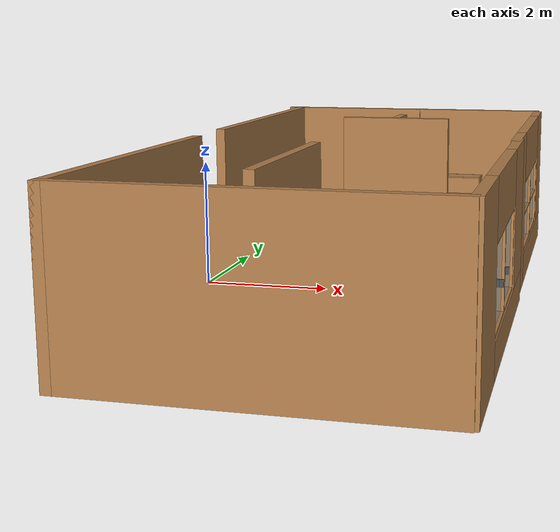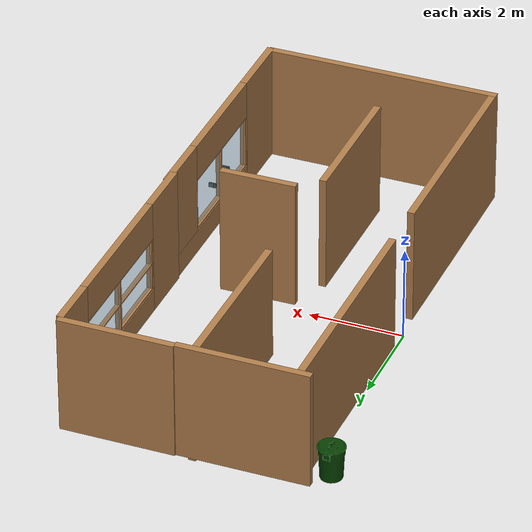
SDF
<?xml version='1.0' encoding='utf-8'?>
<sdf version="1.7">
  <model name="world">
    <static>1</static>
    <frame name="world::__model__" attached_to="world::Wall_81">
      <pose relative_to="__model__">0 0 0 0 -0 0</pose>
    </frame>
    <link name="world::Wall_81">
      <pose relative_to="world::__model__">3.81216 5.30314 0 0 -0 3.14159</pose>
      <self_collide>0</self_collide>
      <kinematic>0</kinematic>
      <enable_wind>0</enable_wind>
      <inertial>
        <inertia>
          <ixx>0</ixx>
          <ixy>0</ixy>
          <ixz>0</ixz>
          <iyy>0</iyy>
          <iyz>0</iyz>
          <izz>0</izz>
        </inertia>
        <mass>0</mass>
        <pose>0 0 0 0 -0 0</pose>
      </inertial>
      <visual name="Wall_81_Visual">
        <pose>0 0 1.25 0 -0 0</pose>
        <geometry>
          <box>
            <size>2.39676 0.15 2.5</size>
          </box>
        </geometry>
        <material>
          <script>
            <uri>file://media/materials/scripts/gazebo.material</uri>
            <name>Gazebo/Wood</name>
          </script>
          <ambient>1 1 1 1</ambient>
          <diffuse>1 1 1 1</diffuse>
          <specular>0.2 0.2 0.2 1</specular>
          <emissive>0 0 0 1</emissive>
          <shader type="pixel" />
        </material>
        <cast_shadows>1</cast_shadows>
        <transparency>0</transparency>
      </visual>
      <collision name="Wall_81_Collision">
        <laser_retro>0</laser_retro>
        <max_contacts>10</max_contacts>
        <pose>0 0 1.25 0 -0 0</pose>
        <geometry>
          <box>
            <size>2.39676 0.15 2.5</size>
          </box>
        </geometry>
        <surface>
          <friction>
            <ode>
              <mu>1</mu>
              <mu2>1</mu2>
              <fdir1>0 0 0</fdir1>
              <slip1>0</slip1>
              <slip2>0</slip2>
            </ode>
            <torsional>
              <coefficient>1</coefficient>
              <patch_radius>0</patch_radius>
              <surface_radius>0</surface_radius>
              <use_patch_radius>1</use_patch_radius>
              <ode>
                <slip>0</slip>
              </ode>
            </torsional>
          </friction>
          <bounce>
            <restitution_coefficient>0</restitution_coefficient>
            <threshold>1e+06</threshold>
          </bounce>
          <contact>
            <collide_without_contact>0</collide_without_contact>
            <collide_without_contact_bitmask>1</collide_without_contact_bitmask>
            <collide_bitmask>1</collide_bitmask>
            <ode>
              <soft_cfm>0</soft_cfm>
              <soft_erp>0.2</soft_erp>
              <kp>1e+13</kp>
              <kd>1</kd>
              <max_vel>0.01</max_vel>
              <min_depth>0</min_depth>
            </ode>
            <bullet>
              <split_impulse>1</split_impulse>
              <split_impulse_penetration_threshold>-0.01</split_impulse_penetration_threshold>
              <soft_cfm>0</soft_cfm>
              <soft_erp>0.2</soft_erp>
              <kp>1e+13</kp>
              <kd>1</kd>
            </bullet>
          </contact>
        </surface>
      </collision>
    </link>
    <link name="world::Wall_82">
      <pose relative_to="world::__model__">1.25 5.26876 0 0 -0 3.14159</pose>
      <self_collide>0</self_collide>
      <kinematic>0</kinematic>
      <enable_wind>0</enable_wind>
      <visual name="Wall_82_Visual">
        <pose>0 0 1.25 0 -0 0</pose>
        <geometry>
          <box>
            <size>2.75 0.15 2.5</size>
          </box>
        </geometry>
        <material>
          <script>
            <uri>file://media/materials/scripts/gazebo.material</uri>
            <name>Gazebo/Wood</name>
          </script>
          <ambient>1 1 1 1</ambient>
          <diffuse>1 1 1 1</diffuse>
          <specular>0.2 0.2 0.2 1</specular>
          <emissive>0 0 0 1</emissive>
          <shader type="pixel" />
        </material>
        <cast_shadows>1</cast_shadows>
        <transparency>0</transparency>
      </visual>
      <collision name="Wall_82_Collision">
        <laser_retro>0</laser_retro>
        <max_contacts>10</max_contacts>
        <pose>0 0 1.25 0 -0 0</pose>
        <geometry>
          <box>
            <size>2.75 0.15 2.5</size>
          </box>
        </geometry>
        <surface>
          <friction>
            <ode>
              <mu>1</mu>
              <mu2>1</mu2>
              <fdir1>0 0 0</fdir1>
              <slip1>0</slip1>
              <slip2>0</slip2>
            </ode>
            <torsional>
              <coefficient>1</coefficient>
              <patch_radius>0</patch_radius>
              <surface_radius>0</surface_radius>
              <use_patch_radius>1</use_patch_radius>
              <ode>
                <slip>0</slip>
              </ode>
            </torsional>
          </friction>
          <bounce>
            <restitution_coefficient>0</restitution_coefficient>
            <threshold>1e+06</threshold>
          </bounce>
          <contact>
            <collide_without_contact>0</collide_without_contact>
            <collide_without_contact_bitmask>1</collide_without_contact_bitmask>
            <collide_bitmask>1</collide_bitmask>
            <ode>
              <soft_cfm>0</soft_cfm>
              <soft_erp>0.2</soft_erp>
              <kp>1e+13</kp>
              <kd>1</kd>
              <max_vel>0.01</max_vel>
              <min_depth>0</min_depth>
            </ode>
            <bullet>
              <split_impulse>1</split_impulse>
              <split_impulse_penetration_threshold>-0.01</split_impulse_penetration_threshold>
              <soft_cfm>0</soft_cfm>
              <soft_erp>0.2</soft_erp>
              <kp>1e+13</kp>
              <kd>1</kd>
            </bullet>
          </contact>
        </surface>
      </collision>
    </link>
    <link name="world::Wall_88_clone_clone_0_clone_1">
      <pose relative_to="world::__model__">3.18351 -0.266846 0.164975 0 0 -3.12845</pose>
      <self_collide>0</self_collide>
      <kinematic>0</kinematic>
      <enable_wind>0</enable_wind>
      <inertial>
        <inertia>
          <ixx>0</ixx>
          <ixy>0</ixy>
          <ixz>0</ixz>
          <iyy>0</iyy>
          <iyz>0</iyz>
          <izz>0</izz>
        </inertia>
        <mass>0</mass>
        <pose>0 0 0 0 -0 0</pose>
      </inertial>
      <visual name="Wall_88_Visual">
        <pose>0 0 1.25 0 -0 0</pose>
        <geometry>
          <box>
            <size>1.5991 0.15 2.77966</size>
          </box>
        </geometry>
        <material>
          <script>
            <uri>file://media/materials/scripts/gazebo.material</uri>
            <name>Gazebo/Wood</name>
          </script>
          <ambient>1 1 1 1</ambient>
          <diffuse>1 1 1 1</diffuse>
          <specular>0.2 0.2 0.2 1</specular>
          <emissive>0 0 0 1</emissive>
          <shader type="pixel" />
        </material>
        <cast_shadows>1</cast_shadows>
        <transparency>0</transparency>
      </visual>
      <collision name="Wall_88_Collision">
        <laser_retro>0</laser_retro>
        <max_contacts>10</max_contacts>
        <pose>0 0 1.25 0 -0 0</pose>
        <geometry>
          <box>
            <size>1.5991 0.15 2.77966</size>
          </box>
        </geometry>
        <surface>
          <friction>
            <ode>
              <mu>1</mu>
              <mu2>1</mu2>
              <fdir1>0 0 0</fdir1>
              <slip1>0</slip1>
              <slip2>0</slip2>
            </ode>
            <torsional>
              <coefficient>1</coefficient>
              <patch_radius>0</patch_radius>
              <surface_radius>0</surface_radius>
              <use_patch_radius>1</use_patch_radius>
              <ode>
                <slip>0</slip>
              </ode>
            </torsional>
          </friction>
          <bounce>
            <restitution_coefficient>0</restitution_coefficient>
            <threshold>1e+06</threshold>
          </bounce>
          <contact>
            <collide_without_contact>0</collide_without_contact>
            <collide_without_contact_bitmask>1</collide_without_contact_bitmask>
            <collide_bitmask>1</collide_bitmask>
            <ode>
              <soft_cfm>0</soft_cfm>
              <soft_erp>0.2</soft_erp>
              <kp>1e+13</kp>
              <kd>1</kd>
              <max_vel>0.01</max_vel>
              <min_depth>0</min_depth>
            </ode>
            <bullet>
              <split_impulse>1</split_impulse>
              <split_impulse_penetration_threshold>-0.01</split_impulse_penetration_threshold>
              <soft_cfm>0</soft_cfm>
              <soft_erp>0.2</soft_erp>
              <kp>1e+13</kp>
              <kd>1</kd>
            </bullet>
          </contact>
        </surface>
      </collision>
    </link>
    <link name="world::Wall_88_clone_clone_1_clone">
      <pose relative_to="world::__model__">2.27024 3.40147 -0.083025 0 0 -1.57962</pose>
      <self_collide>0</self_collide>
      <kinematic>0</kinematic>
      <enable_wind>0</enable_wind>
      <inertial>
        <inertia>
          <ixx>0</ixx>
          <ixy>0</ixy>
          <ixz>0</ixz>
          <iyy>0</iyy>
          <iyz>0</iyz>
          <izz>0</izz>
        </inertia>
        <mass>0</mass>
        <pose>0 0 0 0 -0 0</pose>
      </inertial>
      <visual name="Wall_88_Visual">
        <pose>0 0 1.25 0 -0 0</pose>
        <geometry>
          <box>
            <size>3.83827 0.15 2.45305</size>
          </box>
        </geometry>
        <material>
          <script>
            <uri>file://media/materials/scripts/gazebo.material</uri>
            <name>Gazebo/Wood</name>
          </script>
          <ambient>1 1 1 1</ambient>
          <diffuse>1 1 1 1</diffuse>
          <specular>0.2 0.2 0.2 1</specular>
          <emissive>0 0 0 1</emissive>
          <shader type="pixel" />
        </material>
        <cast_shadows>1</cast_shadows>
        <transparency>0</transparency>
      </visual>
      <collision name="Wall_88_Collision">
        <laser_retro>0</laser_retro>
        <max_contacts>10</max_contacts>
        <pose>0 0 1.25 0 -0 0</pose>
        <geometry>
          <box>
            <size>3.83827 0.15 2.45305</size>
          </box>
        </geometry>
        <surface>
          <friction>
            <ode>
              <mu>1</mu>
              <mu2>1</mu2>
              <fdir1>0 0 0</fdir1>
              <slip1>0</slip1>
              <slip2>0</slip2>
            </ode>
            <torsional>
              <coefficient>1</coefficient>
              <patch_radius>0</patch_radius>
              <surface_radius>0</surface_radius>
              <use_patch_radius>1</use_patch_radius>
              <ode>
                <slip>0</slip>
              </ode>
            </torsional>
          </friction>
          <bounce>
            <restitution_coefficient>0</restitution_coefficient>
            <threshold>1e+06</threshold>
          </bounce>
          <contact>
            <collide_without_contact>0</collide_without_contact>
            <collide_without_contact_bitmask>1</collide_without_contact_bitmask>
            <collide_bitmask>1</collide_bitmask>
            <ode>
              <soft_cfm>0</soft_cfm>
              <soft_erp>0.2</soft_erp>
              <kp>1e+13</kp>
              <kd>1</kd>
              <max_vel>0.01</max_vel>
              <min_depth>0</min_depth>
            </ode>
            <bullet>
              <split_impulse>1</split_impulse>
              <split_impulse_penetration_threshold>-0.01</split_impulse_penetration_threshold>
              <soft_cfm>0</soft_cfm>
              <soft_erp>0.2</soft_erp>
              <kp>1e+13</kp>
              <kd>1</kd>
            </bullet>
          </contact>
        </surface>
      </collision>
    </link>
    <link name="world::Wall_93">
      <pose relative_to="world::__model__">2.13924 -2.58302 0 0 0 -1.5708</pose>
      <self_collide>0</self_collide>
      <kinematic>0</kinematic>
      <enable_wind>0</enable_wind>
      <inertial>
        <inertia>
          <ixx>0</ixx>
          <ixy>0</ixy>
          <ixz>0</ixz>
          <iyy>0</iyy>
          <iyz>0</iyz>
          <izz>0</izz>
        </inertia>
        <mass>0</mass>
        <pose>0 0 0 0 -0 0</pose>
      </inertial>
      <visual name="Wall_93_Visual">
        <pose>0 0 1.25 0 -0 0</pose>
        <geometry>
          <box>
            <size>3.04334 0.15 2.5</size>
          </box>
        </geometry>
        <material>
          <script>
            <uri>file://media/materials/scripts/gazebo.material</uri>
            <name>Gazebo/Wood</name>
          </script>
          <ambient>1 1 1 1</ambient>
          <diffuse>1 1 1 1</diffuse>
          <specular>0.2 0.2 0.2 1</specular>
          <emissive>0 0 0 1</emissive>
          <shader type="pixel" />
        </material>
        <cast_shadows>1</cast_shadows>
        <transparency>0</transparency>
      </visual>
      <collision name="Wall_93_Collision">
        <laser_retro>0</laser_retro>
        <max_contacts>10</max_contacts>
        <pose>0 0 1.25 0 -0 0</pose>
        <geometry>
          <box>
            <size>3.04334 0.15 2.5</size>
          </box>
        </geometry>
        <surface>
          <friction>
            <ode>
              <mu>1</mu>
              <mu2>1</mu2>
              <fdir1>0 0 0</fdir1>
              <slip1>0</slip1>
              <slip2>0</slip2>
            </ode>
            <torsional>
              <coefficient>1</coefficient>
              <patch_radius>0</patch_radius>
              <surface_radius>0</surface_radius>
              <use_patch_radius>1</use_patch_radius>
              <ode>
                <slip>0</slip>
              </ode>
            </torsional>
          </friction>
          <bounce>
            <restitution_coefficient>0</restitution_coefficient>
            <threshold>1e+06</threshold>
          </bounce>
          <contact>
            <collide_without_contact>0</collide_without_contact>
            <collide_without_contact_bitmask>1</collide_without_contact_bitmask>
            <collide_bitmask>1</collide_bitmask>
            <ode>
              <soft_cfm>0</soft_cfm>
              <soft_erp>0.2</soft_erp>
              <kp>1e+13</kp>
              <kd>1</kd>
              <max_vel>0.01</max_vel>
              <min_depth>0</min_depth>
            </ode>
            <bullet>
              <split_impulse>1</split_impulse>
              <split_impulse_penetration_threshold>-0.01</split_impulse_penetration_threshold>
              <soft_cfm>0</soft_cfm>
              <soft_erp>0.2</soft_erp>
              <kp>1e+13</kp>
              <kd>1</kd>
            </bullet>
          </contact>
        </surface>
      </collision>
    </link>
    <link name="world::Wall_96">
      <pose relative_to="world::__model__">4.99028 2.48493 0 0 -0 1.5708</pose>
      <self_collide>0</self_collide>
      <kinematic>0</kinematic>
      <enable_wind>0</enable_wind>
      <visual name="Wall_96_Visual_1">
        <pose>0.626741 0 0.25 0 -0 0</pose>
        <geometry>
          <box>
            <size>4.246519 0.15 0.5</size>
          </box>
        </geometry>
        <material>
          <script>
            <uri>file://media/materials/scripts/gazebo.material</uri>
            <name>Gazebo/Wood</name>
          </script>
          <ambient>1 1 1 1</ambient>
          <diffuse>1 1 1 1</diffuse>
          <specular>0.2 0.2 0.2 1</specular>
          <emissive>0 0 0 1</emissive>
          <shader type="pixel" />
        </material>
        <cast_shadows>1</cast_shadows>
        <transparency>0</transparency>
      </visual>
      <visual name="Wall_96_Visual_2">
        <pose>2.194241 0 1.5 0 -0 0</pose>
        <geometry>
          <box>
            <size>1.111519 0.15 2</size>
          </box>
        </geometry>
        <material>
          <script>
            <uri>file://media/materials/scripts/gazebo.material</uri>
            <name>Gazebo/Wood</name>
          </script>
          <ambient>1 1 1 1</ambient>
          <diffuse>1 1 1 1</diffuse>
          <specular>0.2 0.2 0.2 1</specular>
          <emissive>0 0 0 1</emissive>
          <shader type="pixel" />
        </material>
        <cast_shadows>1</cast_shadows>
        <transparency>0</transparency>
      </visual>
      <visual name="Wall_96_Visual_3">
        <pose>0.070981 0 2.1 0 -0 0</pose>
        <geometry>
          <box>
            <size>3.135 0.15 0.8</size>
          </box>
        </geometry>
        <material>
          <script>
            <uri>file://media/materials/scripts/gazebo.material</uri>
            <name>Gazebo/Wood</name>
          </script>
          <ambient>1 1 1 1</ambient>
          <diffuse>1 1 1 1</diffuse>
          <specular>0.2 0.2 0.2 1</specular>
          <emissive>0 0 0 1</emissive>
          <shader type="pixel" />
        </material>
        <cast_shadows>1</cast_shadows>
        <transparency>0</transparency>
      </visual>
      <visual name="Wall_96_Visual_0">
        <pose>-2.12326 0 1.25 0 -0 0</pose>
        <geometry>
          <box>
            <size>1.253481 0.15 2.5</size>
          </box>
        </geometry>
        <material>
          <script>
            <uri>file://media/materials/scripts/gazebo.material</uri>
            <name>Gazebo/Wood</name>
          </script>
          <ambient>1 1 1 1</ambient>
          <diffuse>1 1 1 1</diffuse>
          <specular>0.2 0.2 0.2 1</specular>
          <emissive>0 0 0 1</emissive>
          <shader type="pixel" />
        </material>
        <cast_shadows>1</cast_shadows>
        <transparency>0</transparency>
      </visual>
      <collision name="Wall_96_Collision_2">
        <laser_retro>0</laser_retro>
        <max_contacts>10</max_contacts>
        <pose>2.194241 0 1.5 0 -0 0</pose>
        <geometry>
          <box>
            <size>1.111519 0.15 2</size>
          </box>
        </geometry>
        <surface>
          <friction>
            <ode>
              <mu>1</mu>
              <mu2>1</mu2>
              <fdir1>0 0 0</fdir1>
              <slip1>0</slip1>
              <slip2>0</slip2>
            </ode>
            <torsional>
              <coefficient>1</coefficient>
              <patch_radius>0</patch_radius>
              <surface_radius>0</surface_radius>
              <use_patch_radius>1</use_patch_radius>
              <ode>
                <slip>0</slip>
              </ode>
            </torsional>
          </friction>
          <bounce>
            <restitution_coefficient>0</restitution_coefficient>
            <threshold>1e+06</threshold>
          </bounce>
          <contact>
            <collide_without_contact>0</collide_without_contact>
            <collide_without_contact_bitmask>1</collide_without_contact_bitmask>
            <collide_bitmask>1</collide_bitmask>
            <ode>
              <soft_cfm>0</soft_cfm>
              <soft_erp>0.2</soft_erp>
              <kp>1e+13</kp>
              <kd>1</kd>
              <max_vel>0.01</max_vel>
              <min_depth>0</min_depth>
            </ode>
            <bullet>
              <split_impulse>1</split_impulse>
              <split_impulse_penetration_threshold>-0.01</split_impulse_penetration_threshold>
              <soft_cfm>0</soft_cfm>
              <soft_erp>0.2</soft_erp>
              <kp>1e+13</kp>
              <kd>1</kd>
            </bullet>
          </contact>
        </surface>
      </collision>
      <collision name="Wall_96_Collision_0">
        <laser_retro>0</laser_retro>
        <max_contacts>10</max_contacts>
        <pose>-2.12326 0 1.25 0 -0 0</pose>
        <geometry>
          <box>
            <size>1.253481 0.15 2.5</size>
          </box>
        </geometry>
        <surface>
          <friction>
            <ode>
              <mu>1</mu>
              <mu2>1</mu2>
              <fdir1>0 0 0</fdir1>
              <slip1>0</slip1>
              <slip2>0</slip2>
            </ode>
            <torsional>
              <coefficient>1</coefficient>
              <patch_radius>0</patch_radius>
              <surface_radius>0</surface_radius>
              <use_patch_radius>1</use_patch_radius>
              <ode>
                <slip>0</slip>
              </ode>
            </torsional>
          </friction>
          <bounce>
            <restitution_coefficient>0</restitution_coefficient>
            <threshold>1e+06</threshold>
          </bounce>
          <contact>
            <collide_without_contact>0</collide_without_contact>
            <collide_without_contact_bitmask>1</collide_without_contact_bitmask>
            <collide_bitmask>1</collide_bitmask>
            <ode>
              <soft_cfm>0</soft_cfm>
              <soft_erp>0.2</soft_erp>
              <kp>1e+13</kp>
              <kd>1</kd>
              <max_vel>0.01</max_vel>
              <min_depth>0</min_depth>
            </ode>
            <bullet>
              <split_impulse>1</split_impulse>
              <split_impulse_penetration_threshold>-0.01</split_impulse_penetration_threshold>
              <soft_cfm>0</soft_cfm>
              <soft_erp>0.2</soft_erp>
              <kp>1e+13</kp>
              <kd>1</kd>
            </bullet>
          </contact>
        </surface>
      </collision>
      <collision name="Wall_96_Collision_1">
        <laser_retro>0</laser_retro>
        <max_contacts>10</max_contacts>
        <pose>0.626741 0 0.25 0 -0 0</pose>
        <geometry>
          <box>
            <size>4.246519 0.15 0.5</size>
          </box>
        </geometry>
        <surface>
          <friction>
            <ode>
              <mu>1</mu>
              <mu2>1</mu2>
              <fdir1>0 0 0</fdir1>
              <slip1>0</slip1>
              <slip2>0</slip2>
            </ode>
            <torsional>
              <coefficient>1</coefficient>
              <patch_radius>0</patch_radius>
              <surface_radius>0</surface_radius>
              <use_patch_radius>1</use_patch_radius>
              <ode>
                <slip>0</slip>
              </ode>
            </torsional>
          </friction>
          <bounce>
            <restitution_coefficient>0</restitution_coefficient>
            <threshold>1e+06</threshold>
          </bounce>
          <contact>
            <collide_without_contact>0</collide_without_contact>
            <collide_without_contact_bitmask>1</collide_without_contact_bitmask>
            <collide_bitmask>1</collide_bitmask>
            <ode>
              <soft_cfm>0</soft_cfm>
              <soft_erp>0.2</soft_erp>
              <kp>1e+13</kp>
              <kd>1</kd>
              <max_vel>0.01</max_vel>
              <min_depth>0</min_depth>
            </ode>
            <bullet>
              <split_impulse>1</split_impulse>
              <split_impulse_penetration_threshold>-0.01</split_impulse_penetration_threshold>
              <soft_cfm>0</soft_cfm>
              <soft_erp>0.2</soft_erp>
              <kp>1e+13</kp>
              <kd>1</kd>
            </bullet>
          </contact>
        </surface>
      </collision>
      <collision name="Wall_96_Collision_3">
        <laser_retro>0</laser_retro>
        <max_contacts>10</max_contacts>
        <pose>0.070981 0 2.1 0 -0 0</pose>
        <geometry>
          <box>
            <size>3.135 0.15 0.8</size>
          </box>
        </geometry>
        <surface>
          <friction>
            <ode>
              <mu>1</mu>
              <mu2>1</mu2>
              <fdir1>0 0 0</fdir1>
              <slip1>0</slip1>
              <slip2>0</slip2>
            </ode>
            <torsional>
              <coefficient>1</coefficient>
              <patch_radius>0</patch_radius>
              <surface_radius>0</surface_radius>
              <use_patch_radius>1</use_patch_radius>
              <ode>
                <slip>0</slip>
              </ode>
            </torsional>
          </friction>
          <bounce>
            <restitution_coefficient>0</restitution_coefficient>
            <threshold>1e+06</threshold>
          </bounce>
          <contact>
            <collide_without_contact>0</collide_without_contact>
            <collide_without_contact_bitmask>1</collide_without_contact_bitmask>
            <collide_bitmask>1</collide_bitmask>
            <ode>
              <soft_cfm>0</soft_cfm>
              <soft_erp>0.2</soft_erp>
              <kp>1e+13</kp>
              <kd>1</kd>
              <max_vel>0.01</max_vel>
              <min_depth>0</min_depth>
            </ode>
            <bullet>
              <split_impulse>1</split_impulse>
              <split_impulse_penetration_threshold>-0.01</split_impulse_penetration_threshold>
              <soft_cfm>0</soft_cfm>
              <soft_erp>0.2</soft_erp>
              <kp>1e+13</kp>
              <kd>1</kd>
            </bullet>
          </contact>
        </surface>
      </collision>
      <visual name="Wall_96_Win_FrameTop">
        <pose>0.071 0 1.675 0 -0 0</pose>
        <geometry>
          <box>
            <size>3.135 0.12 0.05</size>
          </box>
        </geometry>
        <material>
          <script>
            <uri>file://media/materials/scripts/gazebo.material</uri>
            <name>Gazebo/Wood</name>
          </script>
          <ambient>1 1 1 1</ambient>
          <diffuse>1 1 1 1</diffuse>
          <specular>0.2 0.2 0.2 1</specular>
          <emissive>0 0 0 1</emissive>
          <shader type="pixel" />
        </material>
        <cast_shadows>1</cast_shadows>
        <transparency>0</transparency>
      </visual>
      <visual name="Wall_96_Win_FrameBottom">
        <pose>0.071 0 0.525 0 -0 0</pose>
        <geometry>
          <box>
            <size>3.135 0.12 0.05</size>
          </box>
        </geometry>
        <material>
          <script>
            <uri>file://media/materials/scripts/gazebo.material</uri>
            <name>Gazebo/Wood</name>
          </script>
          <ambient>1 1 1 1</ambient>
          <diffuse>1 1 1 1</diffuse>
          <specular>0.2 0.2 0.2 1</specular>
          <emissive>0 0 0 1</emissive>
          <shader type="pixel" />
        </material>
        <cast_shadows>1</cast_shadows>
        <transparency>0</transparency>
      </visual>
      <visual name="Wall_96_Win_FrameLeft">
        <pose>-1.471519 0 1.1 0 -0 0</pose>
        <geometry>
          <box>
            <size>0.05 0.12 1.1</size>
          </box>
        </geometry>
        <material>
          <script>
            <uri>file://media/materials/scripts/gazebo.material</uri>
            <name>Gazebo/Wood</name>
          </script>
          <ambient>1 1 1 1</ambient>
          <diffuse>1 1 1 1</diffuse>
          <specular>0.2 0.2 0.2 1</specular>
          <emissive>0 0 0 1</emissive>
          <shader type="pixel" />
        </material>
        <cast_shadows>1</cast_shadows>
        <transparency>0</transparency>
      </visual>
      <visual name="Wall_96_Win_FrameRight">
        <pose>1.613481 0 1.1 0 -0 0</pose>
        <geometry>
          <box>
            <size>0.05 0.12 1.1</size>
          </box>
        </geometry>
        <material>
          <script>
            <uri>file://media/materials/scripts/gazebo.material</uri>
            <name>Gazebo/Wood</name>
          </script>
          <ambient>1 1 1 1</ambient>
          <diffuse>1 1 1 1</diffuse>
          <specular>0.2 0.2 0.2 1</specular>
          <emissive>0 0 0 1</emissive>
          <shader type="pixel" />
        </material>
        <cast_shadows>1</cast_shadows>
        <transparency>0</transparency>
      </visual>
      <visual name="Wall_96_Win_Mullion">
        <pose>0.071 0 1.1 0 -0 0</pose>
        <geometry>
          <box>
            <size>0.06 0.12 1.1</size>
          </box>
        </geometry>
        <material>
          <script>
            <uri>file://media/materials/scripts/gazebo.material</uri>
            <name>Gazebo/Wood</name>
          </script>
          <ambient>1 1 1 1</ambient>
          <diffuse>1 1 1 1</diffuse>
          <specular>0.2 0.2 0.2 1</specular>
          <emissive>0 0 0 1</emissive>
          <shader type="pixel" />
        </material>
        <cast_shadows>1</cast_shadows>
        <transparency>0</transparency>
      </visual>
      <visual name="Wall_96_Win_MidRailLeft">
        <pose>-0.70276 0 1.1 0 -0 0</pose>
        <geometry>
          <box>
            <size>1.487519 0.1 0.04</size>
          </box>
        </geometry>
        <material>
          <script>
            <uri>file://media/materials/scripts/gazebo.material</uri>
            <name>Gazebo/Wood</name>
          </script>
          <ambient>1 1 1 1</ambient>
          <diffuse>1 1 1 1</diffuse>
          <specular>0.2 0.2 0.2 1</specular>
          <emissive>0 0 0 1</emissive>
          <shader type="pixel" />
        </material>
        <cast_shadows>1</cast_shadows>
        <transparency>0</transparency>
      </visual>
      <visual name="Wall_96_Win_MidRailRight">
        <pose>0.844741 0 1.1 0 -0 0</pose>
        <geometry>
          <box>
            <size>1.487481 0.1 0.04</size>
          </box>
        </geometry>
        <material>
          <script>
            <uri>file://media/materials/scripts/gazebo.material</uri>
            <name>Gazebo/Wood</name>
          </script>
          <ambient>1 1 1 1</ambient>
          <diffuse>1 1 1 1</diffuse>
          <specular>0.2 0.2 0.2 1</specular>
          <emissive>0 0 0 1</emissive>
          <shader type="pixel" />
        </material>
        <cast_shadows>1</cast_shadows>
        <transparency>0</transparency>
      </visual>
      <visual name="Wall_96_Win_GlassUL">
        <pose>-0.70276 0 1.375 0 -0 0</pose>
        <geometry>
          <box>
            <size>1.487519 0.04 0.525</size>
          </box>
        </geometry>
        <material>
          <ambient>0.6 0.8 0.95 0.4</ambient>
          <diffuse>0.6 0.8 0.95 0.4</diffuse>
          <specular>1 1 1 0.8</specular>
          <emissive>0 0 0 1</emissive>
          <shader type="pixel" />
        </material>
        <cast_shadows>0</cast_shadows>
        <transparency>0.6</transparency>
      </visual>
      <visual name="Wall_96_Win_GlassLL">
        <pose>-0.70276 0 0.825 0 -0 0</pose>
        <geometry>
          <box>
            <size>1.487519 0.04 0.525</size>
          </box>
        </geometry>
        <material>
          <ambient>0.6 0.8 0.95 0.4</ambient>
          <diffuse>0.6 0.8 0.95 0.4</diffuse>
          <specular>1 1 1 0.8</specular>
          <emissive>0 0 0 1</emissive>
          <shader type="pixel" />
        </material>
        <cast_shadows>0</cast_shadows>
        <transparency>0.6</transparency>
      </visual>
      <visual name="Wall_96_Win_GlassUR">
        <pose>0.844741 0 1.375 0 -0 0</pose>
        <geometry>
          <box>
            <size>1.487481 0.04 0.525</size>
          </box>
        </geometry>
        <material>
          <ambient>0.6 0.8 0.95 0.4</ambient>
          <diffuse>0.6 0.8 0.95 0.4</diffuse>
          <specular>1 1 1 0.8</specular>
          <emissive>0 0 0 1</emissive>
          <shader type="pixel" />
        </material>
        <cast_shadows>0</cast_shadows>
        <transparency>0.6</transparency>
      </visual>
      <visual name="Wall_96_Win_GlassLR">
        <pose>0.844741 0 0.825 0 -0 0</pose>
        <geometry>
          <box>
            <size>1.487481 0.04 0.525</size>
          </box>
        </geometry>
        <material>
          <ambient>0.6 0.8 0.95 0.4</ambient>
          <diffuse>0.6 0.8 0.95 0.4</diffuse>
          <specular>1 1 1 0.8</specular>
          <emissive>0 0 0 1</emissive>
          <shader type="pixel" />
        </material>
        <cast_shadows>0</cast_shadows>
        <transparency>0.6</transparency>
      </visual>
    </link>
    <link name="world::Wall_96_clone">
      <pose relative_to="world::__model__">5.01671 -2.70631 0 0 -0 1.5708</pose>
      <self_collide>0</self_collide>
      <kinematic>0</kinematic>
      <enable_wind>0</enable_wind>
      <visual name="Wall_96_Visual_0">
        <pose>-1.99826 0 1.25 0 -0 0</pose>
        <geometry>
          <box>
            <size>1.50348 0.15 2.5</size>
          </box>
        </geometry>
        <material>
          <script>
            <uri>file://media/materials/scripts/gazebo.material</uri>
            <name>Gazebo/Wood</name>
          </script>
          <ambient>1 1 1 1</ambient>
          <diffuse>1 1 1 1</diffuse>
          <specular>0.2 0.2 0.2 1</specular>
          <emissive>0 0 0 1</emissive>
          <shader type="pixel" />
        </material>
        <cast_shadows>1</cast_shadows>
        <transparency>0</transparency>
      </visual>
      <visual name="Wall_96_Visual_2">
        <pose>2.06924 0 1.5 0 -0 0</pose>
        <geometry>
          <box>
            <size>1.36152 0.15 2</size>
          </box>
        </geometry>
        <material>
          <script>
            <uri>file://media/materials/scripts/gazebo.material</uri>
            <name>Gazebo/Wood</name>
          </script>
          <ambient>1 1 1 1</ambient>
          <diffuse>1 1 1 1</diffuse>
          <specular>0.2 0.2 0.2 1</specular>
          <emissive>0 0 0 1</emissive>
          <shader type="pixel" />
        </material>
        <cast_shadows>1</cast_shadows>
        <transparency>0</transparency>
      </visual>
      <visual name="Wall_96_Visual_1">
        <pose>0.75174 0 0.25 0 -0 0</pose>
        <geometry>
          <box>
            <size>3.99652 0.15 0.5</size>
          </box>
        </geometry>
        <material>
          <script>
            <uri>file://media/materials/scripts/gazebo.material</uri>
            <name>Gazebo/Wood</name>
          </script>
          <ambient>1 1 1 1</ambient>
          <diffuse>1 1 1 1</diffuse>
          <specular>0.2 0.2 0.2 1</specular>
          <emissive>0 0 0 1</emissive>
          <shader type="pixel" />
        </material>
        <cast_shadows>1</cast_shadows>
        <transparency>0</transparency>
      </visual>
      <visual name="Wall_96_Visual_3">
        <pose>0.070981 0 2.1 0 -0 0</pose>
        <geometry>
          <box>
            <size>2.635 0.15 0.8</size>
          </box>
        </geometry>
        <material>
          <script>
            <uri>file://media/materials/scripts/gazebo.material</uri>
            <name>Gazebo/Wood</name>
          </script>
          <ambient>1 1 1 1</ambient>
          <diffuse>1 1 1 1</diffuse>
          <specular>0.2 0.2 0.2 1</specular>
          <emissive>0 0 0 1</emissive>
          <shader type="pixel" />
        </material>
        <cast_shadows>1</cast_shadows>
        <transparency>0</transparency>
      </visual>
      <collision name="Wall_96_Collision_1">
        <laser_retro>0</laser_retro>
        <max_contacts>10</max_contacts>
        <pose>0.75174 0 0.25 0 -0 0</pose>
        <geometry>
          <box>
            <size>3.99652 0.15 0.5</size>
          </box>
        </geometry>
        <surface>
          <friction>
            <ode>
              <mu>1</mu>
              <mu2>1</mu2>
              <fdir1>0 0 0</fdir1>
              <slip1>0</slip1>
              <slip2>0</slip2>
            </ode>
            <torsional>
              <coefficient>1</coefficient>
              <patch_radius>0</patch_radius>
              <surface_radius>0</surface_radius>
              <use_patch_radius>1</use_patch_radius>
              <ode>
                <slip>0</slip>
              </ode>
            </torsional>
          </friction>
          <bounce>
            <restitution_coefficient>0</restitution_coefficient>
            <threshold>1e+06</threshold>
          </bounce>
          <contact>
            <collide_without_contact>0</collide_without_contact>
            <collide_without_contact_bitmask>1</collide_without_contact_bitmask>
            <collide_bitmask>1</collide_bitmask>
            <ode>
              <soft_cfm>0</soft_cfm>
              <soft_erp>0.2</soft_erp>
              <kp>1e+13</kp>
              <kd>1</kd>
              <max_vel>0.01</max_vel>
              <min_depth>0</min_depth>
            </ode>
            <bullet>
              <split_impulse>1</split_impulse>
              <split_impulse_penetration_threshold>-0.01</split_impulse_penetration_threshold>
              <soft_cfm>0</soft_cfm>
              <soft_erp>0.2</soft_erp>
              <kp>1e+13</kp>
              <kd>1</kd>
            </bullet>
          </contact>
        </surface>
      </collision>
      <collision name="Wall_96_Collision_2">
        <laser_retro>0</laser_retro>
        <max_contacts>10</max_contacts>
        <pose>2.06924 0 1.5 0 -0 0</pose>
        <geometry>
          <box>
            <size>1.36152 0.15 2</size>
          </box>
        </geometry>
        <surface>
          <friction>
            <ode>
              <mu>1</mu>
              <mu2>1</mu2>
              <fdir1>0 0 0</fdir1>
              <slip1>0</slip1>
              <slip2>0</slip2>
            </ode>
            <torsional>
              <coefficient>1</coefficient>
              <patch_radius>0</patch_radius>
              <surface_radius>0</surface_radius>
              <use_patch_radius>1</use_patch_radius>
              <ode>
                <slip>0</slip>
              </ode>
            </torsional>
          </friction>
          <bounce>
            <restitution_coefficient>0</restitution_coefficient>
            <threshold>1e+06</threshold>
          </bounce>
          <contact>
            <collide_without_contact>0</collide_without_contact>
            <collide_without_contact_bitmask>1</collide_without_contact_bitmask>
            <collide_bitmask>1</collide_bitmask>
            <ode>
              <soft_cfm>0</soft_cfm>
              <soft_erp>0.2</soft_erp>
              <kp>1e+13</kp>
              <kd>1</kd>
              <max_vel>0.01</max_vel>
              <min_depth>0</min_depth>
            </ode>
            <bullet>
              <split_impulse>1</split_impulse>
              <split_impulse_penetration_threshold>-0.01</split_impulse_penetration_threshold>
              <soft_cfm>0</soft_cfm>
              <soft_erp>0.2</soft_erp>
              <kp>1e+13</kp>
              <kd>1</kd>
            </bullet>
          </contact>
        </surface>
      </collision>
      <collision name="Wall_96_Collision_3">
        <laser_retro>0</laser_retro>
        <max_contacts>10</max_contacts>
        <pose>0.070981 0 2.1 0 -0 0</pose>
        <geometry>
          <box>
            <size>2.635 0.15 0.8</size>
          </box>
        </geometry>
        <surface>
          <friction>
            <ode>
              <mu>1</mu>
              <mu2>1</mu2>
              <fdir1>0 0 0</fdir1>
              <slip1>0</slip1>
              <slip2>0</slip2>
            </ode>
            <torsional>
              <coefficient>1</coefficient>
              <patch_radius>0</patch_radius>
              <surface_radius>0</surface_radius>
              <use_patch_radius>1</use_patch_radius>
              <ode>
                <slip>0</slip>
              </ode>
            </torsional>
          </friction>
          <bounce>
            <restitution_coefficient>0</restitution_coefficient>
            <threshold>1e+06</threshold>
          </bounce>
          <contact>
            <collide_without_contact>0</collide_without_contact>
            <collide_without_contact_bitmask>1</collide_without_contact_bitmask>
            <collide_bitmask>1</collide_bitmask>
            <ode>
              <soft_cfm>0</soft_cfm>
              <soft_erp>0.2</soft_erp>
              <kp>1e+13</kp>
              <kd>1</kd>
              <max_vel>0.01</max_vel>
              <min_depth>0</min_depth>
            </ode>
            <bullet>
              <split_impulse>1</split_impulse>
              <split_impulse_penetration_threshold>-0.01</split_impulse_penetration_threshold>
              <soft_cfm>0</soft_cfm>
              <soft_erp>0.2</soft_erp>
              <kp>1e+13</kp>
              <kd>1</kd>
            </bullet>
          </contact>
        </surface>
      </collision>
      <collision name="Wall_96_Collision_0">
        <laser_retro>0</laser_retro>
        <max_contacts>10</max_contacts>
        <pose>-1.99826 0 1.25 0 -0 0</pose>
        <geometry>
          <box>
            <size>1.50348 0.15 2.5</size>
          </box>
        </geometry>
        <surface>
          <friction>
            <ode>
              <mu>1</mu>
              <mu2>1</mu2>
              <fdir1>0 0 0</fdir1>
              <slip1>0</slip1>
              <slip2>0</slip2>
            </ode>
            <torsional>
              <coefficient>1</coefficient>
              <patch_radius>0</patch_radius>
              <surface_radius>0</surface_radius>
              <use_patch_radius>1</use_patch_radius>
              <ode>
                <slip>0</slip>
              </ode>
            </torsional>
          </friction>
          <bounce>
            <restitution_coefficient>0</restitution_coefficient>
            <threshold>1e+06</threshold>
          </bounce>
          <contact>
            <collide_without_contact>0</collide_without_contact>
            <collide_without_contact_bitmask>1</collide_without_contact_bitmask>
            <collide_bitmask>1</collide_bitmask>
            <ode>
              <soft_cfm>0</soft_cfm>
              <soft_erp>0.2</soft_erp>
              <kp>1e+13</kp>
              <kd>1</kd>
              <max_vel>0.01</max_vel>
              <min_depth>0</min_depth>
            </ode>
            <bullet>
              <split_impulse>1</split_impulse>
              <split_impulse_penetration_threshold>-0.01</split_impulse_penetration_threshold>
              <soft_cfm>0</soft_cfm>
              <soft_erp>0.2</soft_erp>
              <kp>1e+13</kp>
              <kd>1</kd>
            </bullet>
          </contact>
        </surface>
      </collision>
      <visual name="Wall_96_clone_Win_FrameTop">
        <pose>0.071 0 1.675 0 -0 0</pose>
        <geometry>
          <box>
            <size>2.635 0.12 0.05</size>
          </box>
        </geometry>
        <material>
          <script>
            <uri>file://media/materials/scripts/gazebo.material</uri>
            <name>Gazebo/Wood</name>
          </script>
          <ambient>1 1 1 1</ambient>
          <diffuse>1 1 1 1</diffuse>
          <specular>0.2 0.2 0.2 1</specular>
          <emissive>0 0 0 1</emissive>
          <shader type="pixel" />
        </material>
        <cast_shadows>1</cast_shadows>
        <transparency>0</transparency>
      </visual>
      <visual name="Wall_96_clone_Win_FrameBottom">
        <pose>0.071 0 0.525 0 -0 0</pose>
        <geometry>
          <box>
            <size>2.635 0.12 0.05</size>
          </box>
        </geometry>
        <material>
          <script>
            <uri>file://media/materials/scripts/gazebo.material</uri>
            <name>Gazebo/Wood</name>
          </script>
          <ambient>1 1 1 1</ambient>
          <diffuse>1 1 1 1</diffuse>
          <specular>0.2 0.2 0.2 1</specular>
          <emissive>0 0 0 1</emissive>
          <shader type="pixel" />
        </material>
        <cast_shadows>1</cast_shadows>
        <transparency>0</transparency>
      </visual>
      <visual name="Wall_96_clone_Win_FrameLeft">
        <pose>-1.222 0 1.1 0 -0 0</pose>
        <geometry>
          <box>
            <size>0.05 0.12 1.1</size>
          </box>
        </geometry>
        <material>
          <script>
            <uri>file://media/materials/scripts/gazebo.material</uri>
            <name>Gazebo/Wood</name>
          </script>
          <ambient>1 1 1 1</ambient>
          <diffuse>1 1 1 1</diffuse>
          <specular>0.2 0.2 0.2 1</specular>
          <emissive>0 0 0 1</emissive>
          <shader type="pixel" />
        </material>
        <cast_shadows>1</cast_shadows>
        <transparency>0</transparency>
      </visual>
      <visual name="Wall_96_clone_Win_FrameRight">
        <pose>1.363 0 1.1 0 -0 0</pose>
        <geometry>
          <box>
            <size>0.05 0.12 1.1</size>
          </box>
        </geometry>
        <material>
          <script>
            <uri>file://media/materials/scripts/gazebo.material</uri>
            <name>Gazebo/Wood</name>
          </script>
          <ambient>1 1 1 1</ambient>
          <diffuse>1 1 1 1</diffuse>
          <specular>0.2 0.2 0.2 1</specular>
          <emissive>0 0 0 1</emissive>
          <shader type="pixel" />
        </material>
        <cast_shadows>1</cast_shadows>
        <transparency>0</transparency>
      </visual>
      <visual name="Wall_96_clone_Win_Mullion">
        <pose>0.071 0 1.1 0 -0 0</pose>
        <geometry>
          <box>
            <size>0.06 0.12 1.1</size>
          </box>
        </geometry>
        <material>
          <script>
            <uri>file://media/materials/scripts/gazebo.material</uri>
            <name>Gazebo/Wood</name>
          </script>
          <ambient>1 1 1 1</ambient>
          <diffuse>1 1 1 1</diffuse>
          <specular>0.2 0.2 0.2 1</specular>
          <emissive>0 0 0 1</emissive>
          <shader type="pixel" />
        </material>
        <cast_shadows>1</cast_shadows>
        <transparency>0</transparency>
      </visual>
      <visual name="Wall_96_clone_Win_GlassLeft">
        <pose>-0.578 0 1.1 0 -0 0</pose>
        <geometry>
          <box>
            <size>1.238 0.04 1.1</size>
          </box>
        </geometry>
        <material>
          <ambient>0.6 0.8 0.95 0.4</ambient>
          <diffuse>0.6 0.8 0.95 0.4</diffuse>
          <specular>1 1 1 0.8</specular>
          <emissive>0 0 0 1</emissive>
          <shader type="pixel" />
        </material>
        <cast_shadows>0</cast_shadows>
        <transparency>0.6</transparency>
      </visual>
      <visual name="Wall_96_clone_Win_GlassRight">
        <pose>0.72 0 1.1 0 -0 0</pose>
        <geometry>
          <box>
            <size>1.237 0.04 1.1</size>
          </box>
        </geometry>
        <material>
          <ambient>0.6 0.8 0.95 0.4</ambient>
          <diffuse>0.6 0.8 0.95 0.4</diffuse>
          <specular>1 1 1 0.8</specular>
          <emissive>0 0 0 1</emissive>
          <shader type="pixel" />
        </material>
        <cast_shadows>0</cast_shadows>
        <transparency>0.6</transparency>
      </visual>
      <visual name="Wall_96_clone_Win_HandleLeft">
        <pose>-0.278 0 1 0 -0 0</pose>
        <geometry>
          <box>
            <size>0.03 0.16 0.1</size>
          </box>
        </geometry>
        <material>
          <ambient>0.3 0.3 0.3 1</ambient>
          <diffuse>0.3 0.3 0.3 1</diffuse>
          <specular>0.8 0.8 0.8 1</specular>
          <emissive>0 0 0 1</emissive>
          <shader type="pixel" />
        </material>
        <cast_shadows>1</cast_shadows>
        <transparency>0</transparency>
      </visual>
      <visual name="Wall_96_clone_Win_HandleRight">
        <pose>0.42 0 1 0 -0 0</pose>
        <geometry>
          <box>
            <size>0.03 0.16 0.1</size>
          </box>
        </geometry>
        <material>
          <ambient>0.3 0.3 0.3 1</ambient>
          <diffuse>0.3 0.3 0.3 1</diffuse>
          <specular>0.8 0.8 0.8 1</specular>
          <emissive>0 0 0 1</emissive>
          <shader type="pixel" />
        </material>
        <cast_shadows>1</cast_shadows>
        <transparency>0</transparency>
      </visual>
    </link>
    <model name="world::bookshelf_1">
      <static>1</static>
      <link name="link">
        <inertial>
          <mass>1</mass>
        </inertial>
        <collision name="back">
          <pose>0 0.005 0.6 0 -0 0</pose>
          <geometry>
            <box>
              <size>0.9 0.01 1.2</size>
            </box>
          </geometry>
          <max_contacts>10</max_contacts>
          <surface>
            <contact>
              <ode />
            </contact>
            <bounce />
            <friction>
              <torsional>
                <ode />
              </torsional>
              <ode />
            </friction>
          </surface>
        </collision>
        <visual name="visual1">
          <pose>0 0.005 0.6 0 -0 0</pose>
          <geometry>
            <box>
              <size>0.9 0.01 1.2</size>
            </box>
          </geometry>
          <material>
            <script>
              <uri>file://media/materials/scripts/gazebo.material</uri>
              <name>Gazebo/Wood</name>
            </script>
          </material>
        </visual>
        <collision name="left_side">
          <pose>0.45 -0.195 0.6 0 -0 0</pose>
          <geometry>
            <box>
              <size>0.02 0.4 1.2</size>
            </box>
          </geometry>
          <max_contacts>10</max_contacts>
          <surface>
            <contact>
              <ode />
            </contact>
            <bounce />
            <friction>
              <torsional>
                <ode />
              </torsional>
              <ode />
            </friction>
          </surface>
        </collision>
        <visual name="visual2">
          <pose>0.45 -0.195 0.6 0 -0 0</pose>
          <geometry>
            <box>
              <size>0.02 0.4 1.2</size>
            </box>
          </geometry>
          <material>
            <script>
              <uri>file://media/materials/scripts/gazebo.material</uri>
              <name>Gazebo/Wood</name>
            </script>
          </material>
        </visual>
        <collision name="right_side">
          <pose>-0.45 -0.195 0.6 0 -0 0</pose>
          <geometry>
            <box>
              <size>0.02 0.4 1.2</size>
            </box>
          </geometry>
          <max_contacts>10</max_contacts>
          <surface>
            <contact>
              <ode />
            </contact>
            <bounce />
            <friction>
              <torsional>
                <ode />
              </torsional>
              <ode />
            </friction>
          </surface>
        </collision>
        <visual name="visual3">
          <pose>-0.45 -0.195 0.6 0 -0 0</pose>
          <geometry>
            <box>
              <size>0.02 0.4 1.2</size>
            </box>
          </geometry>
          <material>
            <script>
              <uri>file://media/materials/scripts/gazebo.material</uri>
              <name>Gazebo/Wood</name>
            </script>
          </material>
        </visual>
        <collision name="bottom">
          <pose>0 -0.195 0.03 0 -0 0</pose>
          <geometry>
            <box>
              <size>0.88 0.4 0.06</size>
            </box>
          </geometry>
          <max_contacts>10</max_contacts>
          <surface>
            <contact>
              <ode />
            </contact>
            <bounce />
            <friction>
              <torsional>
                <ode />
              </torsional>
              <ode />
            </friction>
          </surface>
        </collision>
        <visual name="visual4">
          <pose>0 -0.195 0.03 0 -0 0</pose>
          <geometry>
            <box>
              <size>0.88 0.4 0.06</size>
            </box>
          </geometry>
          <material>
            <script>
              <uri>file://media/materials/scripts/gazebo.material</uri>
              <name>Gazebo/Wood</name>
            </script>
          </material>
        </visual>
        <collision name="top">
          <pose>0 -0.195 1.19 0 -0 0</pose>
          <geometry>
            <box>
              <size>0.88 0.4 0.02</size>
            </box>
          </geometry>
          <max_contacts>10</max_contacts>
          <surface>
            <contact>
              <ode />
            </contact>
            <bounce />
            <friction>
              <torsional>
                <ode />
              </torsional>
              <ode />
            </friction>
          </surface>
        </collision>
        <visual name="visual5">
          <pose>0 -0.195 1.19 0 -0 0</pose>
          <geometry>
            <box>
              <size>0.88 0.4 0.02</size>
            </box>
          </geometry>
          <material>
            <script>
              <uri>file://media/materials/scripts/gazebo.material</uri>
              <name>Gazebo/Wood</name>
            </script>
          </material>
        </visual>
        <collision name="low_shelf">
          <pose>0 -0.195 0.43 0 -0 0</pose>
          <geometry>
            <box>
              <size>0.88 0.4 0.02</size>
            </box>
          </geometry>
          <max_contacts>10</max_contacts>
          <surface>
            <contact>
              <ode />
            </contact>
            <bounce />
            <friction>
              <torsional>
                <ode />
              </torsional>
              <ode />
            </friction>
          </surface>
        </collision>
        <visual name="visual6">
          <pose>0 -0.195 0.43 0 -0 0</pose>
          <geometry>
            <box>
              <size>0.88 0.4 0.02</size>
            </box>
          </geometry>
          <material>
            <script>
              <uri>file://media/materials/scripts/gazebo.material</uri>
              <name>Gazebo/Wood</name>
            </script>
          </material>
        </visual>
        <collision name="high_shelf">
          <pose>0 -0.195 0.8 0 -0 0</pose>
          <geometry>
            <box>
              <size>0.88 0.4 0.02</size>
            </box>
          </geometry>
          <max_contacts>10</max_contacts>
          <surface>
            <contact>
              <ode />
            </contact>
            <bounce />
            <friction>
              <torsional>
                <ode />
              </torsional>
              <ode />
            </friction>
          </surface>
        </collision>
        <visual name="visual7">
          <pose>0 -0.195 0.8 0 -0 0</pose>
          <geometry>
            <box>
              <size>0.88 0.4 0.02</size>
            </box>
          </geometry>
          <material>
            <script>
              <uri>file://media/materials/scripts/gazebo.material</uri>
              <name>Gazebo/Wood</name>
            </script>
          </material>
        </visual>
        <self_collide>0</self_collide>
        <enable_wind>0</enable_wind>
        <kinematic>0</kinematic>
      </link>
      <pose relative_to="world::__model__">3.45192 5.20625 0 0 -0 0</pose>
    </model>
    <model name="world::first_2015_trash_can_0">
      <static>1</static>
      <link name="link">
        <inertial>
          <pose>0 0 0.3683 0 -0 0</pose>
          <mass>4.83076</mass>
          <inertia>
            <ixx>0.281534</ixx>
            <ixy>0</ixy>
            <ixz>0</ixz>
            <iyy>0.281534</iyy>
            <iyz>0</iyz>
            <izz>0.126223</izz>
          </inertia>
        </inertial>
        <visual name="visual">
          <geometry>
            <mesh>
              <uri>model://first_2015_trash_can/meshes/trash_can.dae</uri>
            </mesh>
          </geometry>
        </visual>
        <collision name="collision">
          <geometry>
            <mesh>
              <uri>model://first_2015_trash_can/meshes/trash_can.dae</uri>
            </mesh>
          </geometry>
          <max_contacts>10</max_contacts>
          <surface>
            <contact>
              <ode />
            </contact>
            <bounce />
            <friction>
              <torsional>
                <ode />
              </torsional>
              <ode />
            </friction>
          </surface>
        </collision>
        <self_collide>0</self_collide>
        <enable_wind>0</enable_wind>
        <kinematic>0</kinematic>
      </link>
      <pose relative_to="world::__model__">-0.380788 4.89439 0 0 -0 0</pose>
    </model>
    <static>1</static>
    <allow_auto_disable>1</allow_auto_disable>
    <link name="world::Wall_11">
      <collision name="Wall_11_Collision">
        <geometry>
          <box>
            <size>5 0.15 2.5</size>
          </box>
        </geometry>
        <pose>0 0 1.25 0 -0 0</pose>
      </collision>
      <visual name="Wall_11_Visual">
        <pose>0 0 1.25 0 -0 0</pose>
        <geometry>
          <box>
            <size>5 0.15 2.5</size>
          </box>
        </geometry>
        <material>
          <script>
            <uri>file://media/materials/scripts/gazebo.material</uri>
            <name>Gazebo/Wood</name>
          </script>
          <ambient>1 1 1 1</ambient>
        </material>
        <meta>
          <layer>0</layer>
        </meta>
      </visual>
      <pose>2.539437 -5.407513 0.000000 0.000000 -0.000000 0.000000</pose>
    </link>
    <link name="world::Wall_10_Left">
      <collision name="world::Wall_10_Left_Collision">
        <geometry>
          <box>
            <size>4.875 0.15 2.5</size>
          </box>
        </geometry>
        <pose>0 0 1.25 0 0 0</pose>
      </collision>
      <visual name="world::Wall_10_Left_Visual">
        <geometry>
          <box>
            <size>4.875 0.15 2.5</size>
          </box>
        </geometry>
        <pose>0 0 1.25 0 0 0</pose>
        <material>
          <script>
            <uri>file://media/materials/scripts/gazebo.material</uri>
            <name>Gazebo/Wood</name>
          </script>
          <ambient>1 1 1 1</ambient>
        </material>
      </visual>
      <pose>0.114451 2.829987 0.000000 0 0 -1.570800</pose>
    </link>
    <link name="world::Wall_10_Right">
      <collision name="world::Wall_10_Right_Collision">
        <geometry>
          <box>
            <size>4.875 0.15 2.5</size>
          </box>
        </geometry>
        <pose>0 0 1.25 0 0 0</pose>
      </collision>
      <visual name="world::Wall_10_Right_Visual">
        <geometry>
          <box>
            <size>4.875 0.15 2.5</size>
          </box>
        </geometry>
        <pose>0 0 1.25 0 0 0</pose>
        <material>
          <script>
            <uri>file://media/materials/scripts/gazebo.material</uri>
            <name>Gazebo/Wood</name>
          </script>
          <ambient>1 1 1 1</ambient>
        </material>
      </visual>
      <pose>0.114429 -3.045013 0.000000 0 0 -1.570800</pose>
    </link>
  </model>
</sdf>
